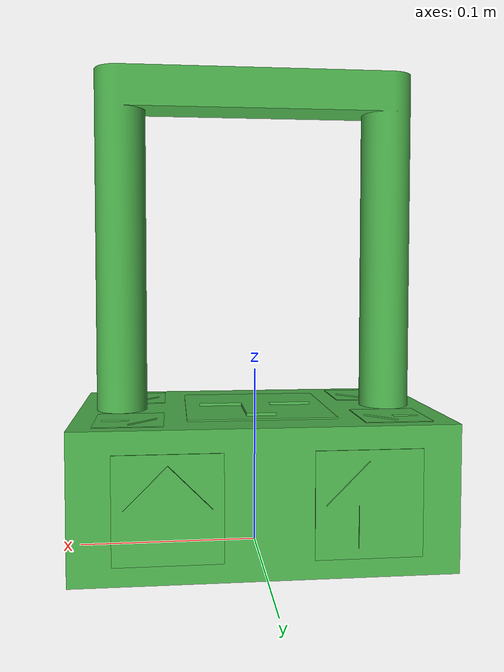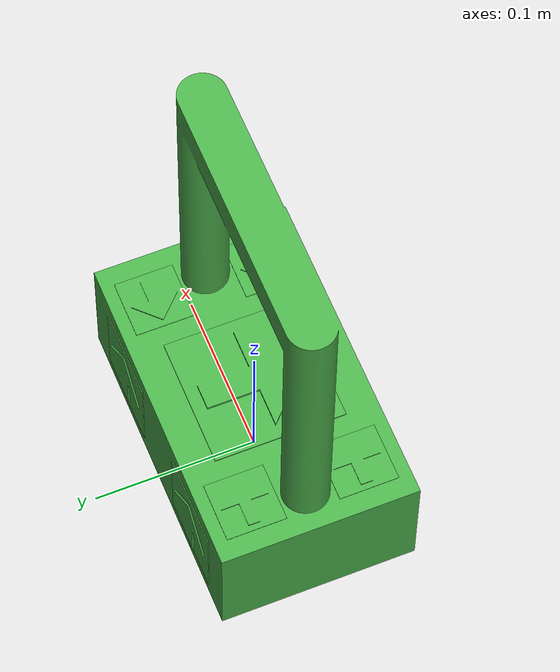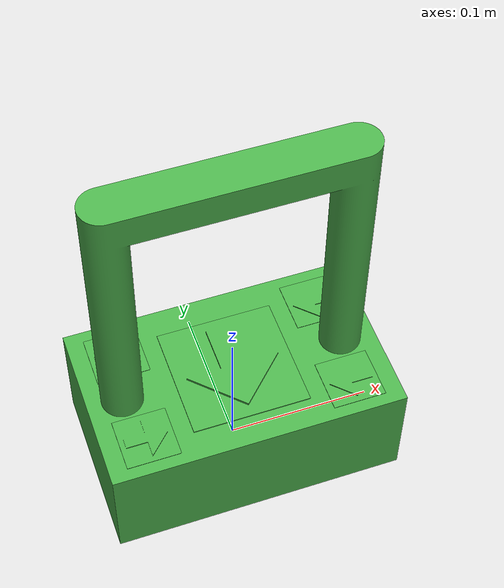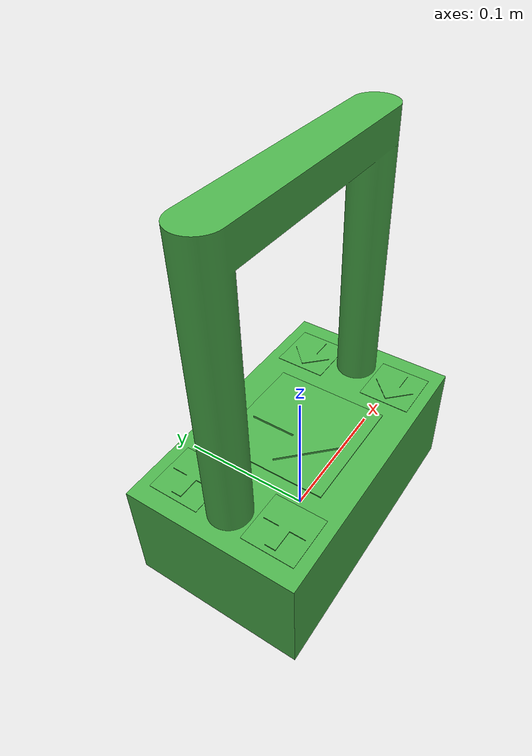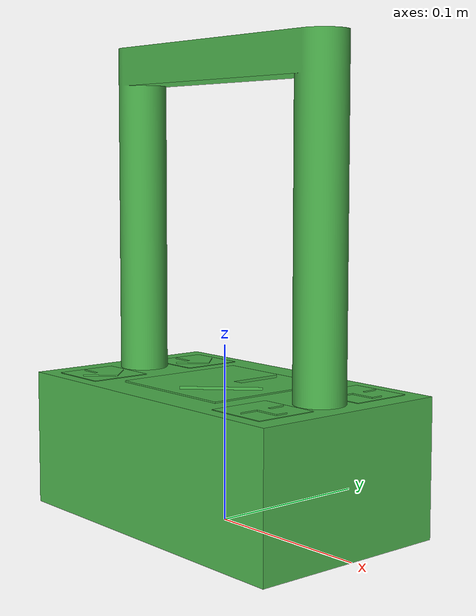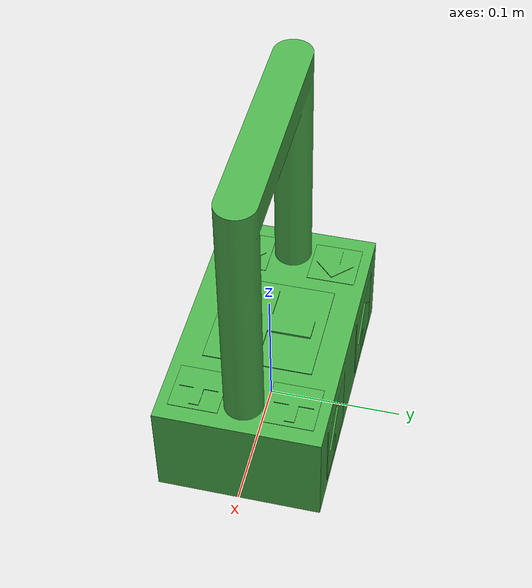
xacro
<?xml version="1.0" encoding="UTF-8"?>
<robot xmlns:xacro="http://ros.org/wiki/xacro" name="wlanbox">
  <property name="M_PI" value="3.1415926535897931"/>
  <property name="MODEL_BASE_NAME" value="wlanbox_base_link"/>

  <link name="${MODEL_BASE_NAME}">
    <visual>
      <origin xyz="0 0 0.000" rpy="0 0 0"/>
      <geometry>
        <mesh filename="package://tbf_gripper_perception/meshes/wlan_box.stl" scale="1e-3 1e-3 1e-3"/>
      </geometry>
      <material name="Greenish_marker">
        <color rgba="0.3 0.7 0.3 1"/>
      </material>
    </visual>
  </link>

  <xacro:include filename="$(find tbf_gripper_perception)/urdf/marker_macro.urdf.xacro"/>
  <marker_macro id="50" parent="${MODEL_BASE_NAME}" xyz="0 0 0.078" rpy="0 0 ${-0.5*M_PI}" size="0.08" />

  <marker_macro id="53" parent="${MODEL_BASE_NAME}" xyz="-0.070 0.034 0.078" rpy="0 0 0" size="0.036" />
  <marker_macro id="54" parent="${MODEL_BASE_NAME}" xyz="0.070 0.034 0.078" rpy="0 0 ${M_PI}" size="0.036" />
  <marker_macro id="52" parent="${MODEL_BASE_NAME}" xyz="0.070 -0.034 0.078" rpy="0 0 ${M_PI}" size="0.036" />
  <marker_macro id="51" parent="${MODEL_BASE_NAME}" xyz="-0.070 -0.034 0.078" rpy="0 0 0" size="0.036" />

  <marker_macro id="55" parent="${MODEL_BASE_NAME}" xyz="0.050 ${0.12*0.5} 0.038" rpy="${-0.5*M_PI} ${-0.5*M_PI} 0" size="0.056" />
  <marker_macro id="56" parent="${MODEL_BASE_NAME}" xyz="-0.052 ${0.12*0.5} 0.038" rpy="${-0.5*M_PI} ${-0.5*M_PI} 0" size="0.056" />

</robot>

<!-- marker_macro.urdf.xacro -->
<robot xmlns:sensor="http://playerstage.sourceforge.net/gazebo/xmlschema/#sensor"
       xmlns:controller="http://playerstage.sourceforge.net/gazebo/xmlschema/#controller"
       xmlns:interface="http://playerstage.sourceforge.net/gazebo/xmlschema/#interface"
       xmlns:xacro="http://ros.org/wiki/xacro" name="marker_macro">

    <property name="M_PI" value="3.1415926535897931"/>

    <xacro:macro name="marker_macro" params="id parent xyz rpy size">
        <joint name="${parent}_marker${id}_joint" type="fixed">
            <origin xyz="${xyz}" rpy="${rpy}"/>
            <parent link="${parent}"/>
            <child link="marker${id}"/>
        </joint>
        <link name="marker${id}">
            <visual>
                <origin xyz="0 0 0.000" rpy="0 0 0"/>
                <geometry>
                    <mesh filename="package://tbf_gripper_perception/meshes/marker_v2.dae"
                          scale="${size} ${size} ${size}"/>
                </geometry>
                <material name="Greenish_marker">
                    <color rgba="0.3 0.7 0.3 1"/>
                </material>
            </visual>
            <collision>
                <!--disable collission-->
                <geometry>
                    <box size="0 0 0"/>
                </geometry>
            </collision>
        </link>
    </xacro:macro>
</robot>
